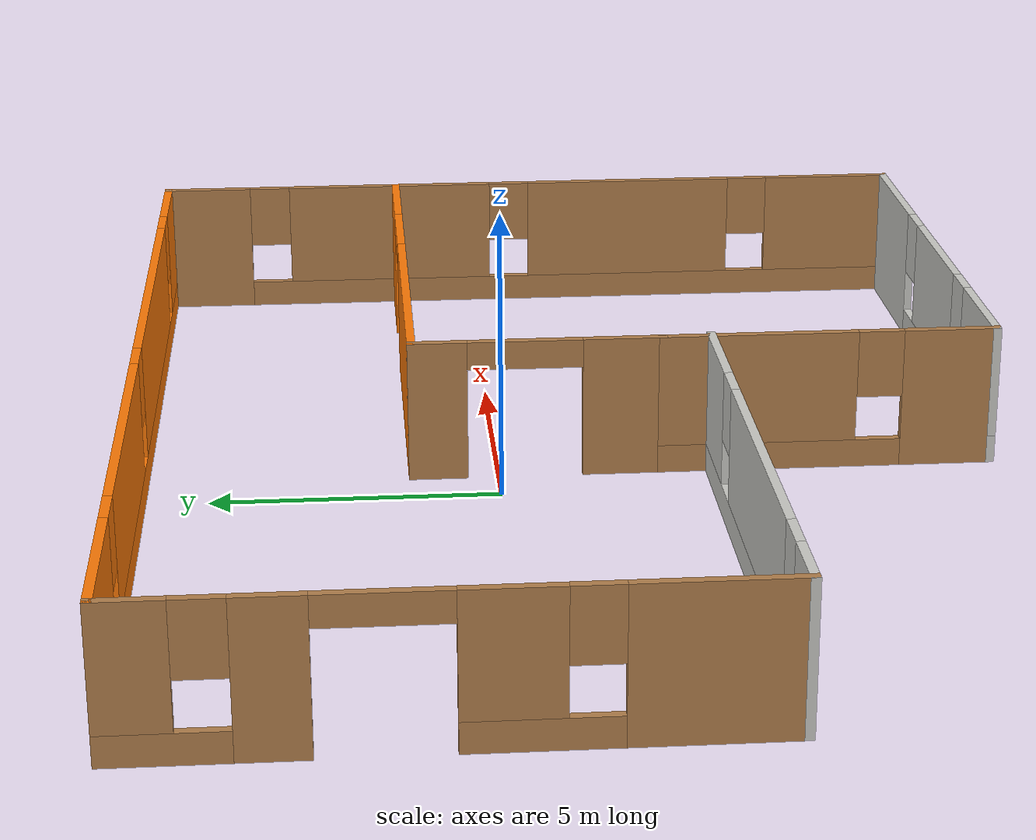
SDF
<?xml version='1.0'?>
<sdf version='1.6'>
  <model name='building'>
    <pose frame=''>0.783304 -1.28181 0 0 -0 0</pose>
    <link name='Wall_100'>
      <pose frame=''>-4.875 -2.425 0 0 -0 0</pose>
      <visual name='Wall_100_Visual_0'>
        <pose frame=''>-4.50618 0 1.25 0 -0 0</pose>
        <geometry>
          <box>
            <size>1.23764 0.15 2.5</size>
          </box>
        </geometry>
        <material>
          <script>
            <uri>file://media/materials/scripts/gazebo.material</uri>
            <name>Gazebo/CeilingTiled</name>
          </script>
          <ambient>0.996078 0.47451 0.0196078 1</ambient>
        </material>
        <meta>
          <layer>0</layer>
        </meta>
      </visual>
      <collision name='Wall_100_Collision_0'>
        <geometry>
          <box>
            <size>1.23764 0.15 2.5</size>
          </box>
        </geometry>
        <pose frame=''>-4.50618 0 1.25 0 -0 0</pose>
      </collision>
      <visual name='Wall_100_Visual_1'>
        <pose frame=''>0.618821 0 0.25 0 -0 0</pose>
        <geometry>
          <box>
            <size>9.01236 0.15 0.5</size>
          </box>
        </geometry>
        <material>
          <script>
            <uri>file://media/materials/scripts/gazebo.material</uri>
            <name>Gazebo/CeilingTiled</name>
          </script>
          <ambient>0.996078 0.47451 0.0196078 1</ambient>
        </material>
        <meta>
          <layer>0</layer>
        </meta>
      </visual>
      <collision name='Wall_100_Collision_1'>
        <geometry>
          <box>
            <size>9.01236 0.15 0.5</size>
          </box>
        </geometry>
        <pose frame=''>0.618821 0 0.25 0 -0 0</pose>
      </collision>
      <visual name='Wall_100_Visual_2'>
        <pose frame=''>-0.416967 0 1.5 0 -0 0</pose>
        <geometry>
          <box>
            <size>5.34078 0.15 2</size>
          </box>
        </geometry>
        <material>
          <script>
            <uri>file://media/materials/scripts/gazebo.material</uri>
            <name>Gazebo/CeilingTiled</name>
          </script>
          <ambient>0.996078 0.47451 0.0196078 1</ambient>
        </material>
        <meta>
          <layer>0</layer>
        </meta>
      </visual>
      <collision name='Wall_100_Collision_2'>
        <geometry>
          <box>
            <size>5.34078 0.15 2</size>
          </box>
        </geometry>
        <pose frame=''>-0.416967 0 1.5 0 -0 0</pose>
      </collision>
      <visual name='Wall_100_Visual_3'>
        <pose frame=''>4.08921 0 1.5 0 -0 0</pose>
        <geometry>
          <box>
            <size>2.07158 0.15 2</size>
          </box>
        </geometry>
        <material>
          <script>
            <uri>file://media/materials/scripts/gazebo.material</uri>
            <name>Gazebo/CeilingTiled</name>
          </script>
          <ambient>0.996078 0.47451 0.0196078 1</ambient>
        </material>
        <meta>
          <layer>0</layer>
        </meta>
      </visual>
      <collision name='Wall_100_Collision_3'>
        <geometry>
          <box>
            <size>2.07158 0.15 2</size>
          </box>
        </geometry>
        <pose frame=''>4.08921 0 1.5 0 -0 0</pose>
      </collision>
      <visual name='Wall_100_Visual_4'>
        <pose frame=''>-3.48736 0 1.9 0 -0 0</pose>
        <geometry>
          <box>
            <size>0.8 0.15 1.2</size>
          </box>
        </geometry>
        <material>
          <script>
            <uri>file://media/materials/scripts/gazebo.material</uri>
            <name>Gazebo/CeilingTiled</name>
          </script>
          <ambient>0.996078 0.47451 0.0196078 1</ambient>
        </material>
        <meta>
          <layer>0</layer>
        </meta>
      </visual>
      <collision name='Wall_100_Collision_4'>
        <geometry>
          <box>
            <size>0.8 0.15 1.2</size>
          </box>
        </geometry>
        <pose frame=''>-3.48736 0 1.9 0 -0 0</pose>
      </collision>
      <visual name='Wall_100_Visual_5'>
        <pose frame=''>2.65342 0 1.9 0 -0 0</pose>
        <geometry>
          <box>
            <size>0.8 0.15 1.2</size>
          </box>
        </geometry>
        <material>
          <script>
            <uri>file://media/materials/scripts/gazebo.material</uri>
            <name>Gazebo/CeilingTiled</name>
          </script>
          <ambient>0.996078 0.47451 0.0196078 1</ambient>
        </material>
        <meta>
          <layer>0</layer>
        </meta>
      </visual>
      <collision name='Wall_100_Collision_5'>
        <geometry>
          <box>
            <size>0.8 0.15 1.2</size>
          </box>
        </geometry>
        <pose frame=''>2.65342 0 1.9 0 -0 0</pose>
      </collision>
    </link>
    <link name='Wall_102'>
      <pose frame=''>0.075 0.6 0 0 -0 1.5708</pose>
      <visual name='Wall_102_Visual_0'>
        <pose frame=''>-1.51676 0 1.25 0 -0 0</pose>
        <geometry>
          <box>
            <size>1.46648 0.15 2.5</size>
          </box>
        </geometry>
        <material>
          <script>
            <uri>file://media/materials/scripts/gazebo.material</uri>
            <name>Gazebo/Wood</name>
          </script>
          <ambient>0.996078 0.47451 0.0196078 1</ambient>
        </material>
        <meta>
          <layer>0</layer>
        </meta>
      </visual>
      <collision name='Wall_102_Collision_0'>
        <geometry>
          <box>
            <size>1.46648 0.15 2.5</size>
          </box>
        </geometry>
        <pose frame=''>-1.51676 0 1.25 0 -0 0</pose>
      </collision>
      <visual name='Wall_102_Visual_1'>
        <pose frame=''>1.73324 0 1.25 0 -0 0</pose>
        <geometry>
          <box>
            <size>1.03352 0.15 2.5</size>
          </box>
        </geometry>
        <material>
          <script>
            <uri>file://media/materials/scripts/gazebo.material</uri>
            <name>Gazebo/Wood</name>
          </script>
          <ambient>0.996078 0.47451 0.0196078 1</ambient>
        </material>
        <meta>
          <layer>0</layer>
        </meta>
      </visual>
      <collision name='Wall_102_Collision_1'>
        <geometry>
          <box>
            <size>1.03352 0.15 2.5</size>
          </box>
        </geometry>
        <pose frame=''>1.73324 0 1.25 0 -0 0</pose>
      </collision>
      <visual name='Wall_102_Visual_2'>
        <pose frame=''>0.216481 0 2.25 0 -0 0</pose>
        <geometry>
          <box>
            <size>2 0.15 0.5</size>
          </box>
        </geometry>
        <material>
          <script>
            <uri>file://media/materials/scripts/gazebo.material</uri>
            <name>Gazebo/Wood</name>
          </script>
          <ambient>0.996078 0.47451 0.0196078 1</ambient>
        </material>
        <meta>
          <layer>0</layer>
        </meta>
      </visual>
      <collision name='Wall_102_Collision_2'>
        <geometry>
          <box>
            <size>2 0.15 0.5</size>
          </box>
        </geometry>
        <pose frame=''>0.216481 0 2.25 0 -0 0</pose>
      </collision>
    </link>
    <link name='Wall_104'>
      <pose frame=''>5 2.775 0 0 -0 0</pose>
      <visual name='Wall_104_Visual_0'>
        <pose frame=''>-2.08983 0 1.25 0 -0 0</pose>
        <geometry>
          <box>
            <size>5.82034 0.15 2.5</size>
          </box>
        </geometry>
        <material>
          <script>
            <uri>file://media/materials/scripts/gazebo.material</uri>
            <name>Gazebo/Grey</name>
          </script>
          <ambient>0.996078 0.47451 0.0196078 1</ambient>
        </material>
        <meta>
          <layer>0</layer>
        </meta>
      </visual>
      <collision name='Wall_104_Collision_0'>
        <geometry>
          <box>
            <size>5.82034 0.15 2.5</size>
          </box>
        </geometry>
        <pose frame=''>-2.08983 0 1.25 0 -0 0</pose>
      </collision>
      <visual name='Wall_104_Visual_1'>
        <pose frame=''>3.91017 0 1.25 0 -0 0</pose>
        <geometry>
          <box>
            <size>2.17965 0.15 2.5</size>
          </box>
        </geometry>
        <material>
          <script>
            <uri>file://media/materials/scripts/gazebo.material</uri>
            <name>Gazebo/Grey</name>
          </script>
          <ambient>0.996078 0.47451 0.0196078 1</ambient>
        </material>
        <meta>
          <layer>0</layer>
        </meta>
      </visual>
      <collision name='Wall_104_Collision_1'>
        <geometry>
          <box>
            <size>2.17965 0.15 2.5</size>
          </box>
        </geometry>
        <pose frame=''>3.91017 0 1.25 0 -0 0</pose>
      </collision>
      <visual name='Wall_104_Visual_2'>
        <pose frame=''>1.82035 0 2.25 0 -0 0</pose>
        <geometry>
          <box>
            <size>2 0.15 0.5</size>
          </box>
        </geometry>
        <material>
          <script>
            <uri>file://media/materials/scripts/gazebo.material</uri>
            <name>Gazebo/Grey</name>
          </script>
          <ambient>0.996078 0.47451 0.0196078 1</ambient>
        </material>
        <meta>
          <layer>0</layer>
        </meta>
      </visual>
      <collision name='Wall_104_Collision_2'>
        <geometry>
          <box>
            <size>2 0.15 0.5</size>
          </box>
        </geometry>
        <pose frame=''>1.82035 0 2.25 0 -0 0</pose>
      </collision>
    </link>
    <link name='Wall_90'>
      <pose frame=''>-9.925 2.5 0 0 -0 1.5708</pose>
      <visual name='Wall_90_Visual_0'>
        <pose frame=''>-3.67666 0 1.25 0 -0 0</pose>
        <geometry>
          <box>
            <size>2.64668 0.15 2.5</size>
          </box>
        </geometry>
        <material>
          <script>
            <uri>file://media/materials/scripts/gazebo.material</uri>
            <name>Gazebo/Wood</name>
          </script>
          <ambient>0.996078 0.47451 0.0196078 1</ambient>
        </material>
        <meta>
          <layer>0</layer>
        </meta>
      </visual>
      <collision name='Wall_90_Collision_0'>
        <geometry>
          <box>
            <size>2.64668 0.15 2.5</size>
          </box>
        </geometry>
        <pose frame=''>-3.67666 0 1.25 0 -0 0</pose>
      </collision>
      <visual name='Wall_90_Visual_1'>
        <pose frame=''>2.52285 0 1.25 0 -0 0</pose>
        <geometry>
          <box>
            <size>1.08977 0.15 2.5</size>
          </box>
        </geometry>
        <material>
          <script>
            <uri>file://media/materials/scripts/gazebo.material</uri>
            <name>Gazebo/Wood</name>
          </script>
          <ambient>0.996078 0.47451 0.0196078 1</ambient>
        </material>
        <meta>
          <layer>0</layer>
        </meta>
      </visual>
      <collision name='Wall_90_Collision_1'>
        <geometry>
          <box>
            <size>1.08977 0.15 2.5</size>
          </box>
        </geometry>
        <pose frame=''>2.52285 0 1.25 0 -0 0</pose>
      </collision>
      <visual name='Wall_90_Visual_2'>
        <pose frame=''>-1.18768 0 0.25 0 -0 0</pose>
        <geometry>
          <box>
            <size>2.33128 0.15 0.5</size>
          </box>
        </geometry>
        <material>
          <script>
            <uri>file://media/materials/scripts/gazebo.material</uri>
            <name>Gazebo/Wood</name>
          </script>
          <ambient>0.996078 0.47451 0.0196078 1</ambient>
        </material>
        <meta>
          <layer>0</layer>
        </meta>
      </visual>
      <collision name='Wall_90_Collision_2'>
        <geometry>
          <box>
            <size>2.33128 0.15 0.5</size>
          </box>
        </geometry>
        <pose frame=''>-1.18768 0 0.25 0 -0 0</pose>
      </collision>
      <visual name='Wall_90_Visual_3'>
        <pose frame=''>4.03387 0 0.25 0 -0 0</pose>
        <geometry>
          <box>
            <size>1.93227 0.15 0.5</size>
          </box>
        </geometry>
        <material>
          <script>
            <uri>file://media/materials/scripts/gazebo.material</uri>
            <name>Gazebo/Wood</name>
          </script>
          <ambient>0.996078 0.47451 0.0196078 1</ambient>
        </material>
        <meta>
          <layer>0</layer>
        </meta>
      </visual>
      <collision name='Wall_90_Collision_3'>
        <geometry>
          <box>
            <size>1.93227 0.15 0.5</size>
          </box>
        </geometry>
        <pose frame=''>4.03387 0 0.25 0 -0 0</pose>
      </collision>
      <visual name='Wall_90_Visual_4'>
        <pose frame=''>-0.787677 0 1.5 0 -0 0</pose>
        <geometry>
          <box>
            <size>1.53128 0.15 2</size>
          </box>
        </geometry>
        <material>
          <script>
            <uri>file://media/materials/scripts/gazebo.material</uri>
            <name>Gazebo/Wood</name>
          </script>
          <ambient>0.996078 0.47451 0.0196078 1</ambient>
        </material>
        <meta>
          <layer>0</layer>
        </meta>
      </visual>
      <collision name='Wall_90_Collision_4'>
        <geometry>
          <box>
            <size>1.53128 0.15 2</size>
          </box>
        </geometry>
        <pose frame=''>-0.787677 0 1.5 0 -0 0</pose>
      </collision>
      <visual name='Wall_90_Visual_5'>
        <pose frame=''>-0.787677 0 1.5 0 -0 0</pose>
        <geometry>
          <box>
            <size>1.53128 0.15 2</size>
          </box>
        </geometry>
        <material>
          <script>
            <uri>file://media/materials/scripts/gazebo.material</uri>
            <name>Gazebo/Wood</name>
          </script>
          <ambient>0.996078 0.47451 0.0196078 1</ambient>
        </material>
        <meta>
          <layer>0</layer>
        </meta>
      </visual>
      <collision name='Wall_90_Collision_5'>
        <geometry>
          <box>
            <size>1.53128 0.15 2</size>
          </box>
        </geometry>
        <pose frame=''>-0.787677 0 1.5 0 -0 0</pose>
      </collision>
      <visual name='Wall_90_Visual_6'>
        <pose frame=''>4.43387 0 1.5 0 -0 0</pose>
        <geometry>
          <box>
            <size>1.13227 0.15 2</size>
          </box>
        </geometry>
        <material>
          <script>
            <uri>file://media/materials/scripts/gazebo.material</uri>
            <name>Gazebo/Wood</name>
          </script>
          <ambient>0.996078 0.47451 0.0196078 1</ambient>
        </material>
        <meta>
          <layer>0</layer>
        </meta>
      </visual>
      <collision name='Wall_90_Collision_6'>
        <geometry>
          <box>
            <size>1.13227 0.15 2</size>
          </box>
        </geometry>
        <pose frame=''>4.43387 0 1.5 0 -0 0</pose>
      </collision>
      <visual name='Wall_90_Visual_7'>
        <pose frame=''>-1.95332 0 1.9 0 -0 0</pose>
        <geometry>
          <box>
            <size>0.8 0.15 1.2</size>
          </box>
        </geometry>
        <material>
          <script>
            <uri>file://media/materials/scripts/gazebo.material</uri>
            <name>Gazebo/Wood</name>
          </script>
          <ambient>0.996078 0.47451 0.0196078 1</ambient>
        </material>
        <meta>
          <layer>0</layer>
        </meta>
      </visual>
      <collision name='Wall_90_Collision_7'>
        <geometry>
          <box>
            <size>0.8 0.15 1.2</size>
          </box>
        </geometry>
        <pose frame=''>-1.95332 0 1.9 0 -0 0</pose>
      </collision>
      <visual name='Wall_90_Visual_8'>
        <pose frame=''>3.46773 0 1.9 0 -0 0</pose>
        <geometry>
          <box>
            <size>0.8 0.15 1.2</size>
          </box>
        </geometry>
        <material>
          <script>
            <uri>file://media/materials/scripts/gazebo.material</uri>
            <name>Gazebo/Wood</name>
          </script>
          <ambient>0.996078 0.47451 0.0196078 1</ambient>
        </material>
        <meta>
          <layer>0</layer>
        </meta>
      </visual>
      <collision name='Wall_90_Collision_8'>
        <geometry>
          <box>
            <size>0.8 0.15 1.2</size>
          </box>
        </geometry>
        <pose frame=''>3.46773 0 1.9 0 -0 0</pose>
      </collision>
      <visual name='Wall_90_Visual_9'>
        <pose frame=''>0.977961 0 2.25 0 -0 0</pose>
        <geometry>
          <box>
            <size>2 0.15 0.5</size>
          </box>
        </geometry>
        <material>
          <script>
            <uri>file://media/materials/scripts/gazebo.material</uri>
            <name>Gazebo/Wood</name>
          </script>
          <ambient>0.996078 0.47451 0.0196078 1</ambient>
        </material>
        <meta>
          <layer>0</layer>
        </meta>
      </visual>
      <collision name='Wall_90_Collision_9'>
        <geometry>
          <box>
            <size>2 0.15 0.5</size>
          </box>
        </geometry>
        <pose frame=''>0.977961 0 2.25 0 -0 0</pose>
      </collision>
      <visual name='Wall_90_Visual_10'>
        <pose frame=''>0.977961 0 2.25 0 -0 0</pose>
        <geometry>
          <box>
            <size>2 0.15 0.5</size>
          </box>
        </geometry>
        <material>
          <script>
            <uri>file://media/materials/scripts/gazebo.material</uri>
            <name>Gazebo/Wood</name>
          </script>
          <ambient>0.996078 0.47451 0.0196078 1</ambient>
        </material>
        <meta>
          <layer>0</layer>
        </meta>
      </visual>
      <collision name='Wall_90_Collision_10'>
        <geometry>
          <box>
            <size>2 0.15 0.5</size>
          </box>
        </geometry>
        <pose frame=''>0.977961 0 2.25 0 -0 0</pose>
      </collision>
    </link>
    <link name='Wall_92'>
      <pose frame=''>0 7.425 0 0 -0 0</pose>
      <visual name='Wall_92_Visual_0'>
        <pose frame=''>-8.55189 0 1.25 0 -0 0</pose>
        <geometry>
          <box>
            <size>2.89622 0.15 2.5</size>
          </box>
        </geometry>
        <material>
          <script>
            <uri>file://media/materials/scripts/gazebo.material</uri>
            <name>Gazebo/Grey</name>
          </script>
          <ambient>0.996078 0.47451 0.0196078 1</ambient>
        </material>
        <meta>
          <layer>0</layer>
        </meta>
      </visual>
      <collision name='Wall_92_Collision_0'>
        <geometry>
          <box>
            <size>2.89622 0.15 2.5</size>
          </box>
        </geometry>
        <pose frame=''>-8.55189 0 1.25 0 -0 0</pose>
      </collision>
      <visual name='Wall_92_Visual_1'>
        <pose frame=''>1.44811 0 0.25 0 -0 0</pose>
        <geometry>
          <box>
            <size>17.1038 0.15 0.5</size>
          </box>
        </geometry>
        <material>
          <script>
            <uri>file://media/materials/scripts/gazebo.material</uri>
            <name>Gazebo/Grey</name>
          </script>
          <ambient>0.996078 0.47451 0.0196078 1</ambient>
        </material>
        <meta>
          <layer>0</layer>
        </meta>
      </visual>
      <collision name='Wall_92_Collision_1'>
        <geometry>
          <box>
            <size>17.1038 0.15 0.5</size>
          </box>
        </geometry>
        <pose frame=''>1.44811 0 0.25 0 -0 0</pose>
      </collision>
      <visual name='Wall_92_Visual_2'>
        <pose frame=''>-3.44613 0 1.5 0 -0 0</pose>
        <geometry>
          <box>
            <size>5.7153 0.15 2</size>
          </box>
        </geometry>
        <material>
          <script>
            <uri>file://media/materials/scripts/gazebo.material</uri>
            <name>Gazebo/Grey</name>
          </script>
          <ambient>0.996078 0.47451 0.0196078 1</ambient>
        </material>
        <meta>
          <layer>0</layer>
        </meta>
      </visual>
      <collision name='Wall_92_Collision_2'>
        <geometry>
          <box>
            <size>5.7153 0.15 2</size>
          </box>
        </geometry>
        <pose frame=''>-3.44613 0 1.5 0 -0 0</pose>
      </collision>
      <visual name='Wall_92_Visual_3'>
        <pose frame=''>3.7232 0 1.5 0 -0 0</pose>
        <geometry>
          <box>
            <size>7.02337 0.15 2</size>
          </box>
        </geometry>
        <material>
          <script>
            <uri>file://media/materials/scripts/gazebo.material</uri>
            <name>Gazebo/Grey</name>
          </script>
          <ambient>0.996078 0.47451 0.0196078 1</ambient>
        </material>
        <meta>
          <layer>0</layer>
        </meta>
      </visual>
      <collision name='Wall_92_Collision_3'>
        <geometry>
          <box>
            <size>7.02337 0.15 2</size>
          </box>
        </geometry>
        <pose frame=''>3.7232 0 1.5 0 -0 0</pose>
      </collision>
      <visual name='Wall_92_Visual_4'>
        <pose frame=''>9.01745 0 1.5 0 -0 0</pose>
        <geometry>
          <box>
            <size>1.96511 0.15 2</size>
          </box>
        </geometry>
        <material>
          <script>
            <uri>file://media/materials/scripts/gazebo.material</uri>
            <name>Gazebo/Grey</name>
          </script>
          <ambient>0.996078 0.47451 0.0196078 1</ambient>
        </material>
        <meta>
          <layer>0</layer>
        </meta>
      </visual>
      <collision name='Wall_92_Collision_4'>
        <geometry>
          <box>
            <size>1.96511 0.15 2</size>
          </box>
        </geometry>
        <pose frame=''>9.01745 0 1.5 0 -0 0</pose>
      </collision>
      <visual name='Wall_92_Visual_5'>
        <pose frame=''>-6.70378 0 1.9 0 -0 0</pose>
        <geometry>
          <box>
            <size>0.8 0.15 1.2</size>
          </box>
        </geometry>
        <material>
          <script>
            <uri>file://media/materials/scripts/gazebo.material</uri>
            <name>Gazebo/Grey</name>
          </script>
          <ambient>0.996078 0.47451 0.0196078 1</ambient>
        </material>
        <meta>
          <layer>0</layer>
        </meta>
      </visual>
      <collision name='Wall_92_Collision_5'>
        <geometry>
          <box>
            <size>0.8 0.15 1.2</size>
          </box>
        </geometry>
        <pose frame=''>-6.70378 0 1.9 0 -0 0</pose>
      </collision>
      <visual name='Wall_92_Visual_6'>
        <pose frame=''>-0.188482 0 1.9 0 -0 0</pose>
        <geometry>
          <box>
            <size>0.8 0.15 1.2</size>
          </box>
        </geometry>
        <material>
          <script>
            <uri>file://media/materials/scripts/gazebo.material</uri>
            <name>Gazebo/Grey</name>
          </script>
          <ambient>0.996078 0.47451 0.0196078 1</ambient>
        </material>
        <meta>
          <layer>0</layer>
        </meta>
      </visual>
      <collision name='Wall_92_Collision_6'>
        <geometry>
          <box>
            <size>0.8 0.15 1.2</size>
          </box>
        </geometry>
        <pose frame=''>-0.188482 0 1.9 0 -0 0</pose>
      </collision>
      <visual name='Wall_92_Visual_7'>
        <pose frame=''>7.63489 0 1.9 0 -0 0</pose>
        <geometry>
          <box>
            <size>0.8 0.15 1.2</size>
          </box>
        </geometry>
        <material>
          <script>
            <uri>file://media/materials/scripts/gazebo.material</uri>
            <name>Gazebo/Grey</name>
          </script>
          <ambient>0.996078 0.47451 0.0196078 1</ambient>
        </material>
        <meta>
          <layer>0</layer>
        </meta>
      </visual>
      <collision name='Wall_92_Collision_7'>
        <geometry>
          <box>
            <size>0.8 0.15 1.2</size>
          </box>
        </geometry>
        <pose frame=''>7.63489 0 1.9 0 -0 0</pose>
      </collision>
    </link>
    <link name='Wall_94'>
      <pose frame=''>9.925 0 0 0 0 -1.5708</pose>
      <visual name='Wall_94_Visual_0'>
        <pose frame=''>-6.6321 0 1.25 0 -0 0</pose>
        <geometry>
          <box>
            <size>1.73581 0.15 2.5</size>
          </box>
        </geometry>
        <material>
          <script>
            <uri>file://media/materials/scripts/gazebo.material</uri>
            <name>Gazebo/Wood</name>
          </script>
          <ambient>0.996078 0.47451 0.0196078 1</ambient>
        </material>
        <meta>
          <layer>0</layer>
        </meta>
      </visual>
      <collision name='Wall_94_Collision_0'>
        <geometry>
          <box>
            <size>1.73581 0.15 2.5</size>
          </box>
        </geometry>
        <pose frame=''>-6.6321 0 1.25 0 -0 0</pose>
      </collision>
      <visual name='Wall_94_Visual_1'>
        <pose frame=''>0.867903 0 0.25 0 -0 0</pose>
        <geometry>
          <box>
            <size>13.2642 0.15 0.5</size>
          </box>
        </geometry>
        <material>
          <script>
            <uri>file://media/materials/scripts/gazebo.material</uri>
            <name>Gazebo/Wood</name>
          </script>
          <ambient>0.996078 0.47451 0.0196078 1</ambient>
        </material>
        <meta>
          <layer>0</layer>
        </meta>
      </visual>
      <collision name='Wall_94_Collision_1'>
        <geometry>
          <box>
            <size>13.2642 0.15 0.5</size>
          </box>
        </geometry>
        <pose frame=''>0.867903 0 0.25 0 -0 0</pose>
      </collision>
      <visual name='Wall_94_Visual_2'>
        <pose frame=''>-2.90308 0 1.5 0 -0 0</pose>
        <geometry>
          <box>
            <size>4.12223 0.15 2</size>
          </box>
        </geometry>
        <material>
          <script>
            <uri>file://media/materials/scripts/gazebo.material</uri>
            <name>Gazebo/Wood</name>
          </script>
          <ambient>0.996078 0.47451 0.0196078 1</ambient>
        </material>
        <meta>
          <layer>0</layer>
        </meta>
      </visual>
      <collision name='Wall_94_Collision_2'>
        <geometry>
          <box>
            <size>4.12223 0.15 2</size>
          </box>
        </geometry>
        <pose frame=''>-2.90308 0 1.5 0 -0 0</pose>
      </collision>
      <visual name='Wall_94_Visual_3'>
        <pose frame=''>2.0459 0 1.5 0 -0 0</pose>
        <geometry>
          <box>
            <size>4.17573 0.15 2</size>
          </box>
        </geometry>
        <material>
          <script>
            <uri>file://media/materials/scripts/gazebo.material</uri>
            <name>Gazebo/Wood</name>
          </script>
          <ambient>0.996078 0.47451 0.0196078 1</ambient>
        </material>
        <meta>
          <layer>0</layer>
        </meta>
      </visual>
      <collision name='Wall_94_Collision_3'>
        <geometry>
          <box>
            <size>4.17573 0.15 2</size>
          </box>
        </geometry>
        <pose frame=''>2.0459 0 1.5 0 -0 0</pose>
      </collision>
      <visual name='Wall_94_Visual_4'>
        <pose frame=''>6.21688 0 1.5 0 -0 0</pose>
        <geometry>
          <box>
            <size>2.56623 0.15 2</size>
          </box>
        </geometry>
        <material>
          <script>
            <uri>file://media/materials/scripts/gazebo.material</uri>
            <name>Gazebo/Wood</name>
          </script>
          <ambient>0.996078 0.47451 0.0196078 1</ambient>
        </material>
        <meta>
          <layer>0</layer>
        </meta>
      </visual>
      <collision name='Wall_94_Collision_4'>
        <geometry>
          <box>
            <size>2.56623 0.15 2</size>
          </box>
        </geometry>
        <pose frame=''>6.21688 0 1.5 0 -0 0</pose>
      </collision>
      <visual name='Wall_94_Visual_5'>
        <pose frame=''>-5.36419 0 1.9 0 -0 0</pose>
        <geometry>
          <box>
            <size>0.8 0.15 1.2</size>
          </box>
        </geometry>
        <material>
          <script>
            <uri>file://media/materials/scripts/gazebo.material</uri>
            <name>Gazebo/Wood</name>
          </script>
          <ambient>0.996078 0.47451 0.0196078 1</ambient>
        </material>
        <meta>
          <layer>0</layer>
        </meta>
      </visual>
      <collision name='Wall_94_Collision_5'>
        <geometry>
          <box>
            <size>0.8 0.15 1.2</size>
          </box>
        </geometry>
        <pose frame=''>-5.36419 0 1.9 0 -0 0</pose>
      </collision>
      <visual name='Wall_94_Visual_6'>
        <pose frame=''>-0.441964 0 1.9 0 -0 0</pose>
        <geometry>
          <box>
            <size>0.8 0.15 1.2</size>
          </box>
        </geometry>
        <material>
          <script>
            <uri>file://media/materials/scripts/gazebo.material</uri>
            <name>Gazebo/Wood</name>
          </script>
          <ambient>0.996078 0.47451 0.0196078 1</ambient>
        </material>
        <meta>
          <layer>0</layer>
        </meta>
      </visual>
      <collision name='Wall_94_Collision_6'>
        <geometry>
          <box>
            <size>0.8 0.15 1.2</size>
          </box>
        </geometry>
        <pose frame=''>-0.441964 0 1.9 0 -0 0</pose>
      </collision>
      <visual name='Wall_94_Visual_7'>
        <pose frame=''>4.53377 0 1.9 0 -0 0</pose>
        <geometry>
          <box>
            <size>0.8 0.15 1.2</size>
          </box>
        </geometry>
        <material>
          <script>
            <uri>file://media/materials/scripts/gazebo.material</uri>
            <name>Gazebo/Wood</name>
          </script>
          <ambient>0.996078 0.47451 0.0196078 1</ambient>
        </material>
        <meta>
          <layer>0</layer>
        </meta>
      </visual>
      <collision name='Wall_94_Collision_7'>
        <geometry>
          <box>
            <size>0.8 0.15 1.2</size>
          </box>
        </geometry>
        <pose frame=''>4.53377 0 1.9 0 -0 0</pose>
      </collision>
    </link>
    <link name='Wall_96'>
      <pose frame=''>5 -7.425 0 0 -0 3.14159</pose>
      <visual name='Wall_96_Visual_0'>
        <pose frame=''>-3.50317 0 1.25 0 -0 0</pose>
        <geometry>
          <box>
            <size>2.99366 0.15 2.5</size>
          </box>
        </geometry>
        <material>
          <script>
            <uri>file://media/materials/scripts/gazebo.material</uri>
            <name>Gazebo/CeilingTiled</name>
          </script>
          <ambient>0.996078 0.47451 0.0196078 1</ambient>
        </material>
        <meta>
          <layer>0</layer>
        </meta>
      </visual>
      <collision name='Wall_96_Collision_0'>
        <geometry>
          <box>
            <size>2.99366 0.15 2.5</size>
          </box>
        </geometry>
        <pose frame=''>-3.50317 0 1.25 0 -0 0</pose>
      </collision>
      <visual name='Wall_96_Visual_1'>
        <pose frame=''>1.49683 0 0.25 0 -0 0</pose>
        <geometry>
          <box>
            <size>7.00634 0.15 0.5</size>
          </box>
        </geometry>
        <material>
          <script>
            <uri>file://media/materials/scripts/gazebo.material</uri>
            <name>Gazebo/CeilingTiled</name>
          </script>
          <ambient>0.996078 0.47451 0.0196078 1</ambient>
        </material>
        <meta>
          <layer>0</layer>
        </meta>
      </visual>
      <collision name='Wall_96_Collision_1'>
        <geometry>
          <box>
            <size>7.00634 0.15 0.5</size>
          </box>
        </geometry>
        <pose frame=''>1.49683 0 0.25 0 -0 0</pose>
      </collision>
      <visual name='Wall_96_Visual_2'>
        <pose frame=''>0.346506 0 1.5 0 -0 0</pose>
        <geometry>
          <box>
            <size>3.10568 0.15 2</size>
          </box>
        </geometry>
        <material>
          <script>
            <uri>file://media/materials/scripts/gazebo.material</uri>
            <name>Gazebo/CeilingTiled</name>
          </script>
          <ambient>0.996078 0.47451 0.0196078 1</ambient>
        </material>
        <meta>
          <layer>0</layer>
        </meta>
      </visual>
      <collision name='Wall_96_Collision_2'>
        <geometry>
          <box>
            <size>3.10568 0.15 2</size>
          </box>
        </geometry>
        <pose frame=''>0.346506 0 1.5 0 -0 0</pose>
      </collision>
      <visual name='Wall_96_Visual_3'>
        <pose frame=''>3.84967 0 1.5 0 -0 0</pose>
        <geometry>
          <box>
            <size>2.30065 0.15 2</size>
          </box>
        </geometry>
        <material>
          <script>
            <uri>file://media/materials/scripts/gazebo.material</uri>
            <name>Gazebo/CeilingTiled</name>
          </script>
          <ambient>0.996078 0.47451 0.0196078 1</ambient>
        </material>
        <meta>
          <layer>0</layer>
        </meta>
      </visual>
      <collision name='Wall_96_Collision_3'>
        <geometry>
          <box>
            <size>2.30065 0.15 2</size>
          </box>
        </geometry>
        <pose frame=''>3.84967 0 1.5 0 -0 0</pose>
      </collision>
      <visual name='Wall_96_Visual_4'>
        <pose frame=''>-1.60634 0 1.9 0 -0 0</pose>
        <geometry>
          <box>
            <size>0.8 0.15 1.2</size>
          </box>
        </geometry>
        <material>
          <script>
            <uri>file://media/materials/scripts/gazebo.material</uri>
            <name>Gazebo/CeilingTiled</name>
          </script>
          <ambient>0.996078 0.47451 0.0196078 1</ambient>
        </material>
        <meta>
          <layer>0</layer>
        </meta>
      </visual>
      <collision name='Wall_96_Collision_4'>
        <geometry>
          <box>
            <size>0.8 0.15 1.2</size>
          </box>
        </geometry>
        <pose frame=''>-1.60634 0 1.9 0 -0 0</pose>
      </collision>
      <visual name='Wall_96_Visual_5'>
        <pose frame=''>2.29935 0 1.9 0 -0 0</pose>
        <geometry>
          <box>
            <size>0.8 0.15 1.2</size>
          </box>
        </geometry>
        <material>
          <script>
            <uri>file://media/materials/scripts/gazebo.material</uri>
            <name>Gazebo/CeilingTiled</name>
          </script>
          <ambient>0.996078 0.47451 0.0196078 1</ambient>
        </material>
        <meta>
          <layer>0</layer>
        </meta>
      </visual>
      <collision name='Wall_96_Collision_5'>
        <geometry>
          <box>
            <size>0.8 0.15 1.2</size>
          </box>
        </geometry>
        <pose frame=''>2.29935 0 1.9 0 -0 0</pose>
      </collision>
    </link>
    <link name='Wall_98'>
      <pose frame=''>0.075 -4.5 0 0 -0 1.5708</pose>
      <visual name='Wall_98_Visual_0'>
        <pose frame=''>-2.1449 0 1.25 0 -0 0</pose>
        <geometry>
          <box>
            <size>1.71019 0.15 2.5</size>
          </box>
        </geometry>
        <material>
          <script>
            <uri>file://media/materials/scripts/gazebo.material</uri>
            <name>Gazebo/Wood</name>
          </script>
          <ambient>0.996078 0.47451 0.0196078 1</ambient>
        </material>
        <meta>
          <layer>0</layer>
        </meta>
      </visual>
      <collision name='Wall_98_Collision_0'>
        <geometry>
          <box>
            <size>1.71019 0.15 2.5</size>
          </box>
        </geometry>
        <pose frame=''>-2.1449 0 1.25 0 -0 0</pose>
      </collision>
      <visual name='Wall_98_Visual_1'>
        <pose frame=''>0.855096 0 0.25 0 -0 0</pose>
        <geometry>
          <box>
            <size>4.28981 0.15 0.5</size>
          </box>
        </geometry>
        <material>
          <script>
            <uri>file://media/materials/scripts/gazebo.material</uri>
            <name>Gazebo/Wood</name>
          </script>
          <ambient>0.996078 0.47451 0.0196078 1</ambient>
        </material>
        <meta>
          <layer>0</layer>
        </meta>
      </visual>
      <collision name='Wall_98_Collision_1'>
        <geometry>
          <box>
            <size>4.28981 0.15 0.5</size>
          </box>
        </geometry>
        <pose frame=''>0.855096 0 0.25 0 -0 0</pose>
      </collision>
      <visual name='Wall_98_Visual_2'>
        <pose frame=''>1.2551 0 1.5 0 -0 0</pose>
        <geometry>
          <box>
            <size>3.48981 0.15 2</size>
          </box>
        </geometry>
        <material>
          <script>
            <uri>file://media/materials/scripts/gazebo.material</uri>
            <name>Gazebo/Wood</name>
          </script>
          <ambient>0.996078 0.47451 0.0196078 1</ambient>
        </material>
        <meta>
          <layer>0</layer>
        </meta>
      </visual>
      <collision name='Wall_98_Collision_2'>
        <geometry>
          <box>
            <size>3.48981 0.15 2</size>
          </box>
        </geometry>
        <pose frame=''>1.2551 0 1.5 0 -0 0</pose>
      </collision>
      <visual name='Wall_98_Visual_3'>
        <pose frame=''>-0.889809 0 1.9 0 -0 0</pose>
        <geometry>
          <box>
            <size>0.8 0.15 1.2</size>
          </box>
        </geometry>
        <material>
          <script>
            <uri>file://media/materials/scripts/gazebo.material</uri>
            <name>Gazebo/Wood</name>
          </script>
          <ambient>0.996078 0.47451 0.0196078 1</ambient>
        </material>
        <meta>
          <layer>0</layer>
        </meta>
      </visual>
      <collision name='Wall_98_Collision_3'>
        <geometry>
          <box>
            <size>0.8 0.15 1.2</size>
          </box>
        </geometry>
        <pose frame=''>-0.889809 0 1.9 0 -0 0</pose>
      </collision>
    </link>
    <static>1</static>
  </model>
</sdf>
